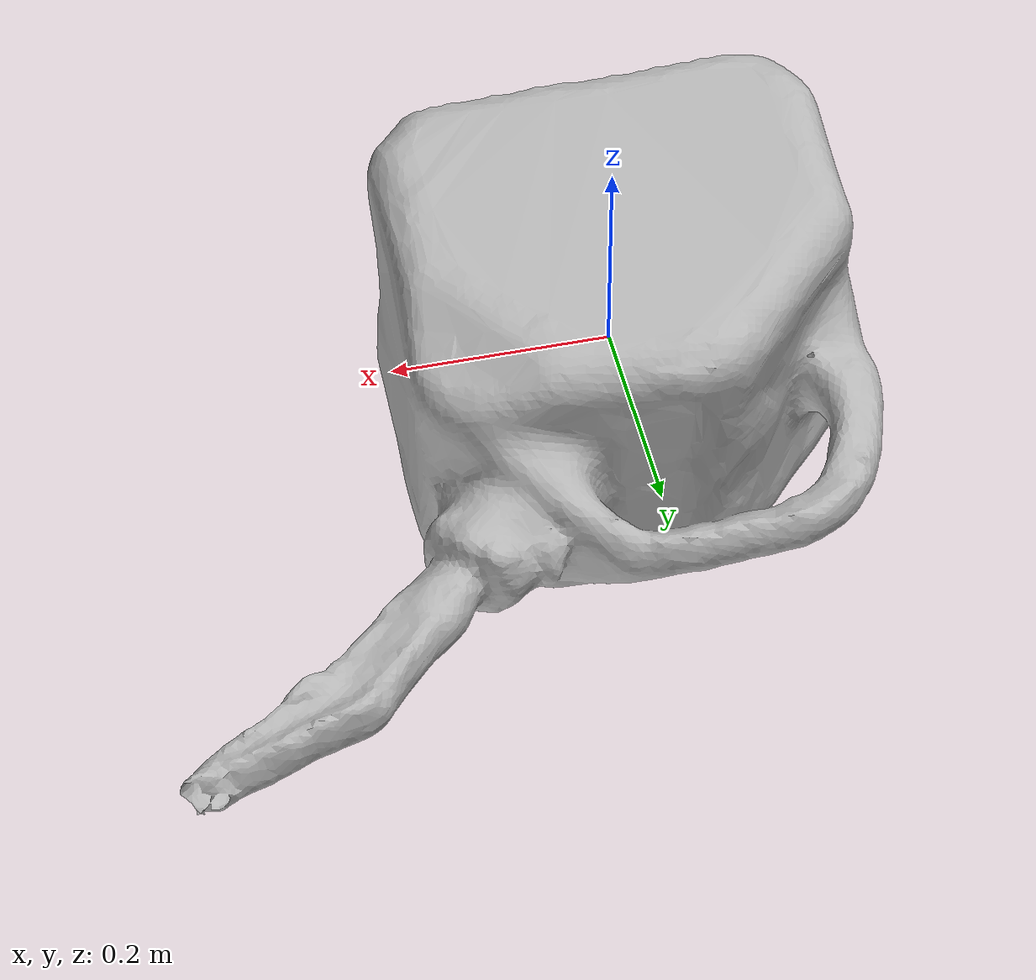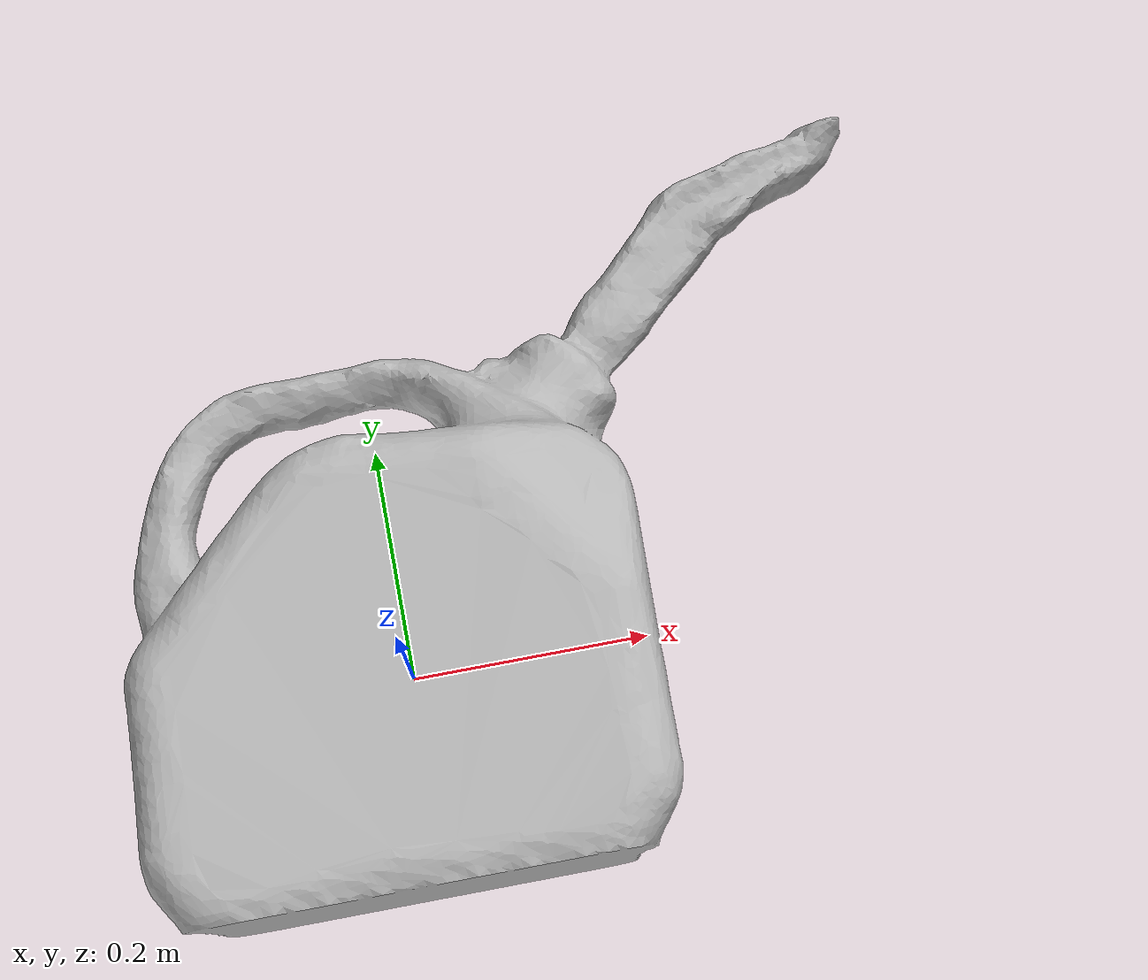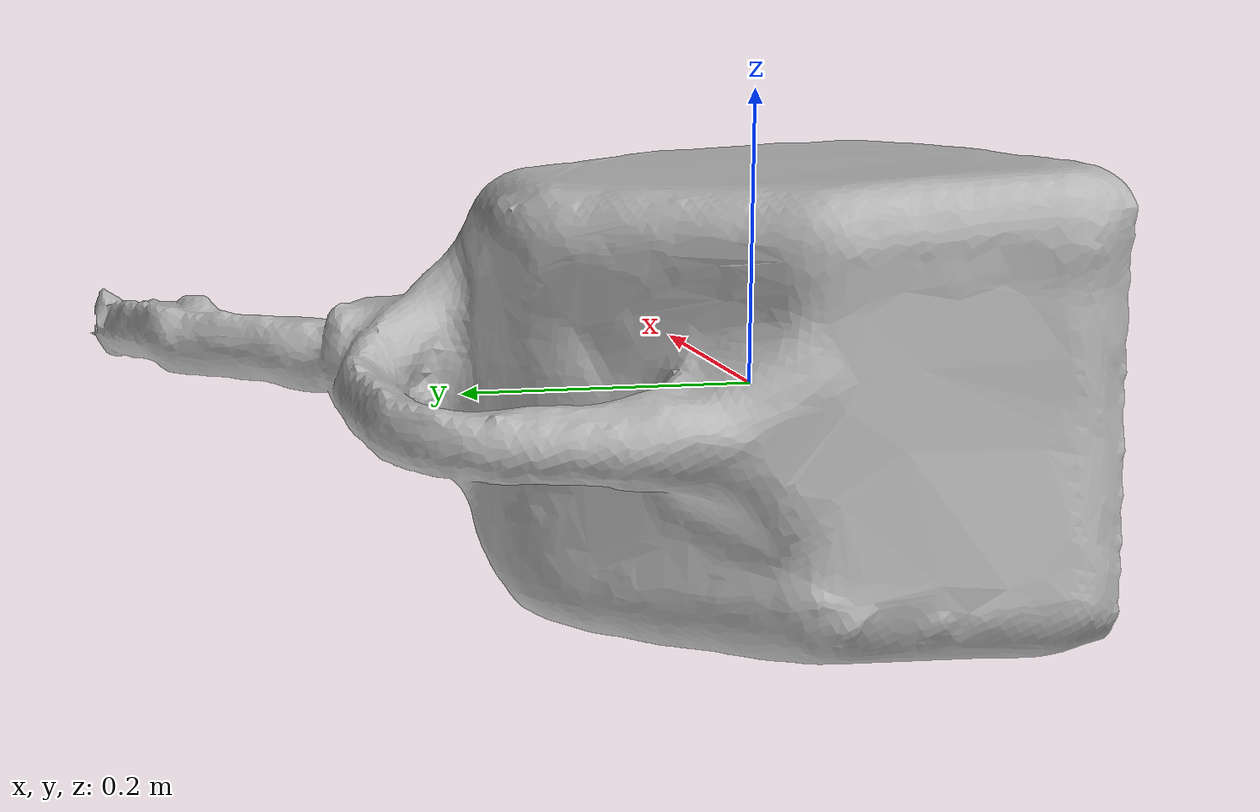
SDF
<?xml version="1.0" ?>
<sdf version="1.4">
  <model name="gastank_color">
    <link name="link">
      <visual name="visual">
        <pose>0 0 0 0 0 0</pose>
        <geometry>
          <mesh>
            <uri>model://gastank_color/meshes/gastank_color.dae</uri>
            <scale>.1875 .1875 .1875</scale>
          </mesh>
        </geometry>
      </visual>
    </link>
    <static>1</static>
  </model>
</sdf>
